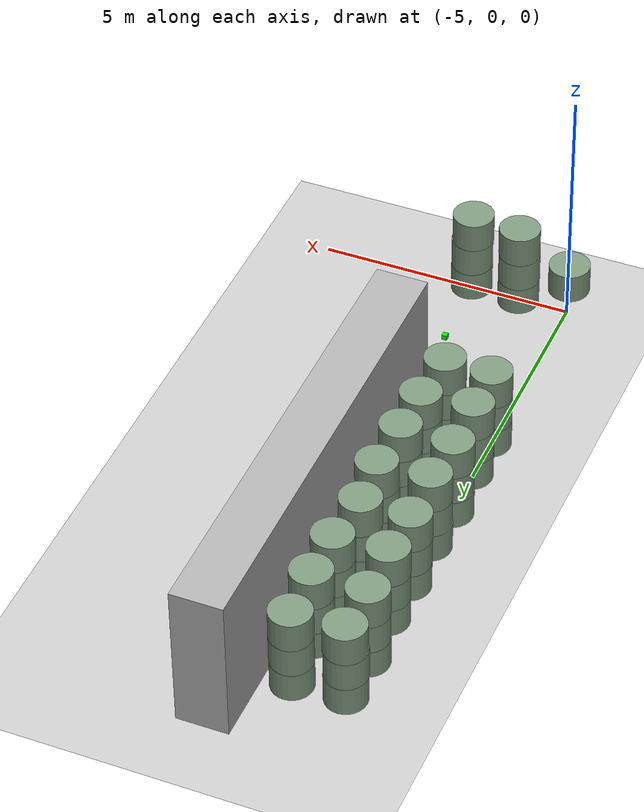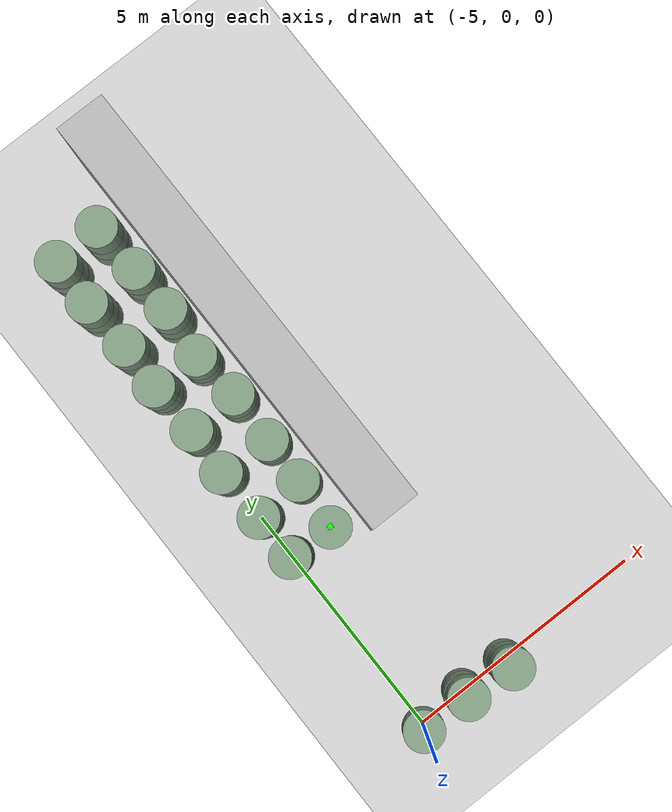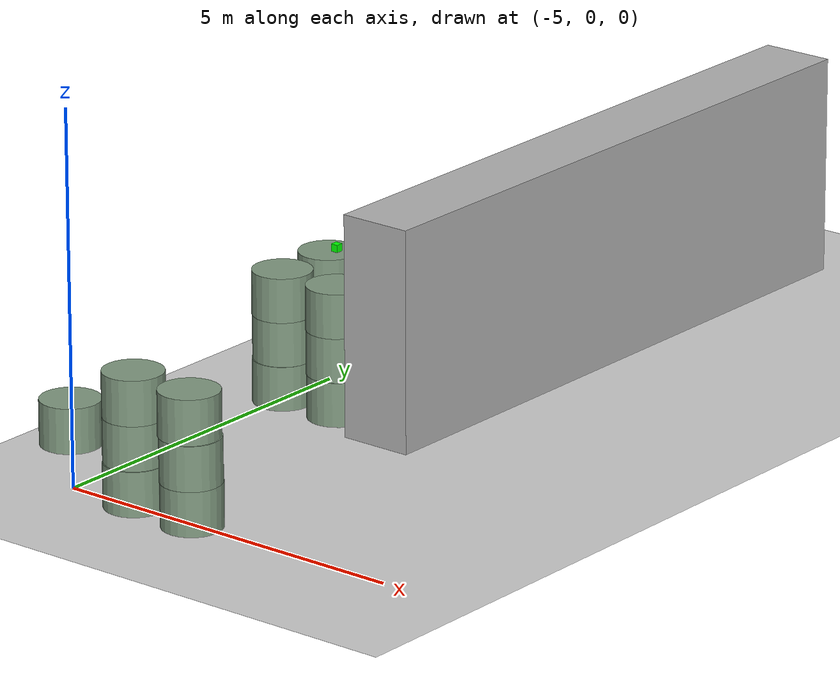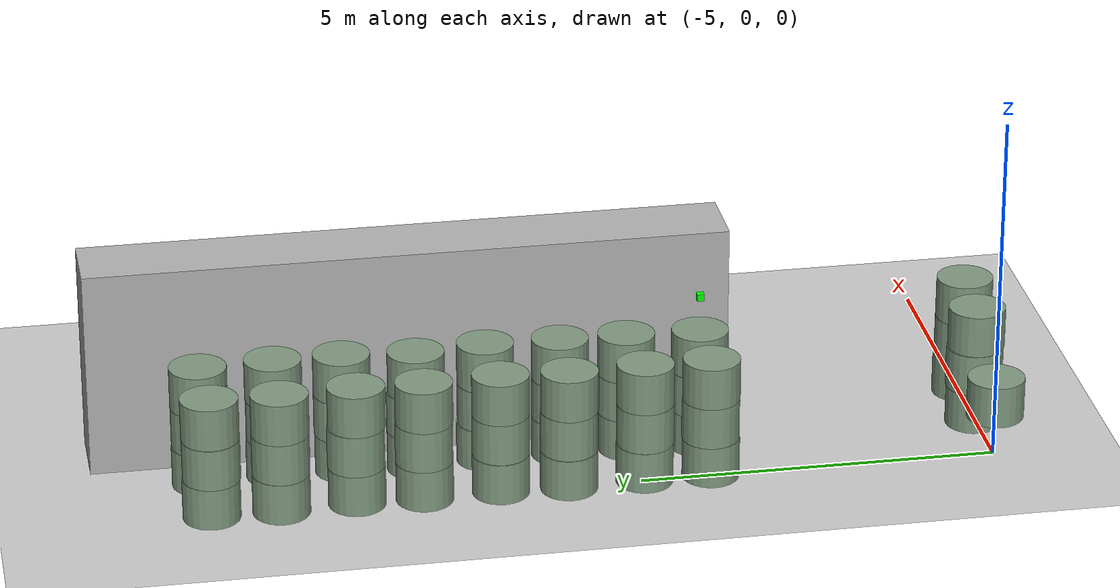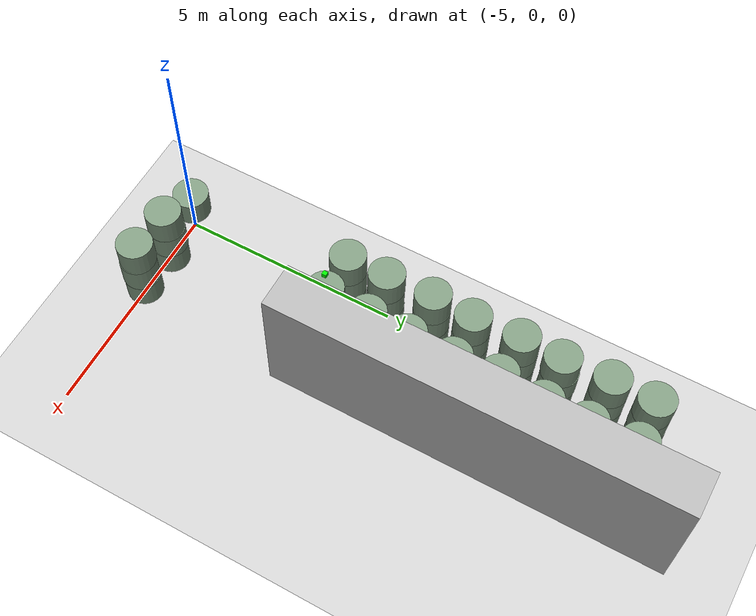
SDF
<sdf version="1.6">
 <world name="default">
  <model name="wall_3">
   <pose frame="sim_world">-3.0 8.0 1.5 0 0 0</pose>
   <static>True</static>
   <link name="wall_3_link">
    <inertial>
     <mass>100</mass>
     <inertia>
      <ixx>0.166667</ixx>
      <ixy>0</ixy>
      <ixz>0</ixz>
      <iyy>0.166667</iyy>
      <iyz>0</iyz>
      <izz>0.166667</izz>
     </inertia>
    </inertial>
    <collision name="wall_3_collision">
     <geometry><box><size>1.0 9.0 3.0</size></box></geometry>
     <max_contacts>100</max_contacts>
    </collision>
    <visual name="wall_3_visual">
     <geometry><box><size>1.0 9.0 3.0</size></box></geometry>
     <material><ambient>0.7 0.7 0.7 1</ambient><diffuse>0.7 0.7 0.7 1</diffuse></material>
    </visual>
   </link>
  </model>
  <model name="cylinder_70">
   <pose frame="sim_world">-5.02247039007 0.00130549979099 0.9 0 -0 0</pose>
   <static>True</static>
   <link name="cylinder_70_link">
    <inertial>
     <mass>100</mass>
     <inertia><ixx>0.145833</ixx><ixy>0</ixy><ixz>0</ixz><iyy>0.145833</iyy><iyz>0</iyz><izz>0.125</izz></inertia>
    </inertial>
    <collision name="cylinder_70_collision">
     <geometry><cylinder><length>0.6</length><radius>0.4</radius></cylinder></geometry>
     <max_contacts>100</max_contacts>
    </collision>
    <visual name="cylinder_70_visual">
     <geometry><cylinder><length>0.6</length><radius>0.4</radius></cylinder></geometry>
     <material><ambient>0.5 0.6 0.5 1</ambient><diffuse>0.5 0.6 0.5 1</diffuse></material>
    </visual>
   </link>
  </model>
  <model name="cylinder_72">
   <pose frame="sim_world">-4.96729994905 4.02571649465 0.3 0 -0 0</pose>
   <static>True</static>
   <link name="cylinder_72_link">
    <inertial>
     <mass>100</mass>
     <inertia><ixx>0.145833</ixx><ixy>0</ixy><ixz>0</ixz><iyy>0.145833</iyy><iyz>0</iyz><izz>0.125</izz></inertia>
    </inertial>
    <collision name="cylinder_72_collision">
     <geometry><cylinder><length>0.6</length><radius>0.4</radius></cylinder></geometry>
     <max_contacts>100</max_contacts>
    </collision>
    <visual name="cylinder_72_visual">
     <geometry><cylinder><length>0.6</length><radius>0.4</radius></cylinder></geometry>
     <material><ambient>0.5 0.6 0.5 1</ambient><diffuse>0.5 0.6 0.5 1</diffuse></material>
    </visual>
   </link>
  </model>
  <model name="cylinder_73">
   <pose frame="sim_world">-4.96571243679 4.03533766781 0.9 0 -0 0</pose>
   <static>True</static>
   <link name="cylinder_73_link">
    <inertial>
     <mass>100</mass>
     <inertia><ixx>0.145833</ixx><ixy>0</ixy><ixz>0</ixz><iyy>0.145833</iyy><iyz>0</iyz><izz>0.125</izz></inertia>
    </inertial>
    <collision name="cylinder_73_collision">
     <geometry><cylinder><length>0.6</length><radius>0.4</radius></cylinder></geometry>
     <max_contacts>100</max_contacts>
    </collision>
    <visual name="cylinder_73_visual">
     <geometry><cylinder><length>0.6</length><radius>0.4</radius></cylinder></geometry>
     <material><ambient>0.5 0.6 0.5 1</ambient><diffuse>0.5 0.6 0.5 1</diffuse></material>
    </visual>
   </link>
  </model>
  <model name="cylinder_74">
   <pose frame="sim_world">-4.96867291994 4.02974630601 1.5 0 -0 0</pose>
   <static>True</static>
   <link name="cylinder_74_link">
    <inertial>
     <mass>100</mass>
     <inertia><ixx>0.145833</ixx><ixy>0</ixy><ixz>0</ixz><iyy>0.145833</iyy><iyz>0</iyz><izz>0.125</izz></inertia>
    </inertial>
    <collision name="cylinder_74_collision">
     <geometry><cylinder><length>0.6</length><radius>0.4</radius></cylinder></geometry>
     <max_contacts>100</max_contacts>
    </collision>
    <visual name="cylinder_74_visual">
     <geometry><cylinder><length>0.6</length><radius>0.4</radius></cylinder></geometry>
     <material><ambient>0.5 0.6 0.5 1</ambient><diffuse>0.5 0.6 0.5 1</diffuse></material>
    </visual>
   </link>
  </model>
  <model name="cylinder_75">
   <pose frame="sim_world">-4.96746767143 4.95746706721 0.3 0 -0 0</pose>
   <static>True</static>
   <link name="cylinder_75_link">
    <inertial>
     <mass>100</mass>
     <inertia><ixx>0.145833</ixx><ixy>0</ixy><ixz>0</ixz><iyy>0.145833</iyy><iyz>0</iyz><izz>0.125</izz></inertia>
    </inertial>
    <collision name="cylinder_75_collision">
     <geometry><cylinder><length>0.6</length><radius>0.4</radius></cylinder></geometry>
     <max_contacts>100</max_contacts>
    </collision>
    <visual name="cylinder_75_visual">
     <geometry><cylinder><length>0.6</length><radius>0.4</radius></cylinder></geometry>
     <material><ambient>0.5 0.6 0.5 1</ambient><diffuse>0.5 0.6 0.5 1</diffuse></material>
    </visual>
   </link>
  </model>
  <model name="cylinder_76">
   <pose frame="sim_world">-4.96714978747 4.94937827695 0.9 0 -0 0</pose>
   <static>True</static>
   <link name="cylinder_76_link">
    <inertial>
     <mass>100</mass>
     <inertia><ixx>0.145833</ixx><ixy>0</ixy><ixz>0</ixz><iyy>0.145833</iyy><iyz>0</iyz><izz>0.125</izz></inertia>
    </inertial>
    <collision name="cylinder_76_collision">
     <geometry><cylinder><length>0.6</length><radius>0.4</radius></cylinder></geometry>
     <max_contacts>100</max_contacts>
    </collision>
    <visual name="cylinder_76_visual">
     <geometry><cylinder><length>0.6</length><radius>0.4</radius></cylinder></geometry>
     <material><ambient>0.5 0.6 0.5 1</ambient><diffuse>0.5 0.6 0.5 1</diffuse></material>
    </visual>
   </link>
  </model>
  <model name="cylinder_77">
   <pose frame="sim_world">-4.96989153009 4.95533965027 1.5 0 -0 0</pose>
   <static>True</static>
   <link name="cylinder_77_link">
    <inertial>
     <mass>100</mass>
     <inertia><ixx>0.145833</ixx><ixy>0</ixy><ixz>0</ixz><iyy>0.145833</iyy><iyz>0</iyz><izz>0.125</izz></inertia>
    </inertial>
    <collision name="cylinder_77_collision">
     <geometry><cylinder><length>0.6</length><radius>0.4</radius></cylinder></geometry>
     <max_contacts>100</max_contacts>
    </collision>
    <visual name="cylinder_77_visual">
     <geometry><cylinder><length>0.6</length><radius>0.4</radius></cylinder></geometry>
     <material><ambient>0.5 0.6 0.5 1</ambient><diffuse>0.5 0.6 0.5 1</diffuse></material>
    </visual>
   </link>
  </model>
  <model name="cylinder_78">
   <pose frame="sim_world">-5.00550552167 6.02336155491 0.3 0 -0 0</pose>
   <static>True</static>
   <link name="cylinder_78_link">
    <inertial>
     <mass>100</mass>
     <inertia><ixx>0.145833</ixx><ixy>0</ixy><ixz>0</ixz><iyy>0.145833</iyy><iyz>0</iyz><izz>0.125</izz></inertia>
    </inertial>
    <collision name="cylinder_78_collision">
     <geometry><cylinder><length>0.6</length><radius>0.4</radius></cylinder></geometry>
     <max_contacts>100</max_contacts>
    </collision>
    <visual name="cylinder_78_visual">
     <geometry><cylinder><length>0.6</length><radius>0.4</radius></cylinder></geometry>
     <material><ambient>0.5 0.6 0.5 1</ambient><diffuse>0.5 0.6 0.5 1</diffuse></material>
    </visual>
   </link>
  </model>
  <model name="cylinder_79">
   <pose frame="sim_world">-4.99261690055 6.0256120794 0.9 0 -0 0</pose>
   <static>True</static>
   <link name="cylinder_79_link">
    <inertial>
     <mass>100</mass>
     <inertia><ixx>0.145833</ixx><ixy>0</ixy><ixz>0</ixz><iyy>0.145833</iyy><iyz>0</iyz><izz>0.125</izz></inertia>
    </inertial>
    <collision name="cylinder_79_collision">
     <geometry><cylinder><length>0.6</length><radius>0.4</radius></cylinder></geometry>
     <max_contacts>100</max_contacts>
    </collision>
    <visual name="cylinder_79_visual">
     <geometry><cylinder><length>0.6</length><radius>0.4</radius></cylinder></geometry>
     <material><ambient>0.5 0.6 0.5 1</ambient><diffuse>0.5 0.6 0.5 1</diffuse></material>
    </visual>
   </link>
  </model>
  <model name="cylinder_80">
   <pose frame="sim_world">-5.00248042956 6.01832176252 1.5 0 -0 0</pose>
   <static>True</static>
   <link name="cylinder_80_link">
    <inertial>
     <mass>100</mass>
     <inertia><ixx>0.145833</ixx><ixy>0</ixy><ixz>0</ixz><iyy>0.145833</iyy><iyz>0</iyz><izz>0.125</izz></inertia>
    </inertial>
    <collision name="cylinder_80_collision">
     <geometry><cylinder><length>0.6</length><radius>0.4</radius></cylinder></geometry>
     <max_contacts>100</max_contacts>
    </collision>
    <visual name="cylinder_80_visual">
     <geometry><cylinder><length>0.6</length><radius>0.4</radius></cylinder></geometry>
     <material><ambient>0.5 0.6 0.5 1</ambient><diffuse>0.5 0.6 0.5 1</diffuse></material>
    </visual>
   </link>
  </model>
  <model name="cylinder_81">
   <pose frame="sim_world">-4.9603061503 6.96653866494 0.3 0 -0 0</pose>
   <static>True</static>
   <link name="cylinder_81_link">
    <inertial>
     <mass>100</mass>
     <inertia><ixx>0.145833</ixx><ixy>0</ixy><ixz>0</ixz><iyy>0.145833</iyy><iyz>0</iyz><izz>0.125</izz></inertia>
    </inertial>
    <collision name="cylinder_81_collision">
     <geometry><cylinder><length>0.6</length><radius>0.4</radius></cylinder></geometry>
     <max_contacts>100</max_contacts>
    </collision>
    <visual name="cylinder_81_visual">
     <geometry><cylinder><length>0.6</length><radius>0.4</radius></cylinder></geometry>
     <material><ambient>0.5 0.6 0.5 1</ambient><diffuse>0.5 0.6 0.5 1</diffuse></material>
    </visual>
   </link>
  </model>
  <model name="cylinder_82">
   <pose frame="sim_world">-4.94610467754 6.96508211103 0.9 0 -0 0</pose>
   <static>True</static>
   <link name="cylinder_82_link">
    <inertial>
     <mass>100</mass>
     <inertia><ixx>0.145833</ixx><ixy>0</ixy><ixz>0</ixz><iyy>0.145833</iyy><iyz>0</iyz><izz>0.125</izz></inertia>
    </inertial>
    <collision name="cylinder_82_collision">
     <geometry><cylinder><length>0.6</length><radius>0.4</radius></cylinder></geometry>
     <max_contacts>100</max_contacts>
    </collision>
    <visual name="cylinder_82_visual">
     <geometry><cylinder><length>0.6</length><radius>0.4</radius></cylinder></geometry>
     <material><ambient>0.5 0.6 0.5 1</ambient><diffuse>0.5 0.6 0.5 1</diffuse></material>
    </visual>
   </link>
  </model>
  <model name="cylinder_83">
   <pose frame="sim_world">-4.95228465244 6.96501977975 1.5 0 -0 0</pose>
   <static>True</static>
   <link name="cylinder_83_link">
    <inertial>
     <mass>100</mass>
     <inertia><ixx>0.145833</ixx><ixy>0</ixy><ixz>0</ixz><iyy>0.145833</iyy><iyz>0</iyz><izz>0.125</izz></inertia>
    </inertial>
    <collision name="cylinder_83_collision">
     <geometry><cylinder><length>0.6</length><radius>0.4</radius></cylinder></geometry>
     <max_contacts>100</max_contacts>
    </collision>
    <visual name="cylinder_83_visual">
     <geometry><cylinder><length>0.6</length><radius>0.4</radius></cylinder></geometry>
     <material><ambient>0.5 0.6 0.5 1</ambient><diffuse>0.5 0.6 0.5 1</diffuse></material>
    </visual>
   </link>
  </model>
  <model name="cylinder_84">
   <pose frame="sim_world">-4.99042980781 8.02958762259 0.3 0 -0 0</pose>
   <static>True</static>
   <link name="cylinder_84_link">
    <inertial>
     <mass>100</mass>
     <inertia><ixx>0.145833</ixx><ixy>0</ixy><ixz>0</ixz><iyy>0.145833</iyy><iyz>0</iyz><izz>0.125</izz></inertia>
    </inertial>
    <collision name="cylinder_84_collision">
     <geometry><cylinder><length>0.6</length><radius>0.4</radius></cylinder></geometry>
     <max_contacts>100</max_contacts>
    </collision>
    <visual name="cylinder_84_visual">
     <geometry><cylinder><length>0.6</length><radius>0.4</radius></cylinder></geometry>
     <material><ambient>0.5 0.6 0.5 1</ambient><diffuse>0.5 0.6 0.5 1</diffuse></material>
    </visual>
   </link>
  </model>
  <model name="cylinder_85">
   <pose frame="sim_world">-4.99214448029 8.03540983763 0.9 0 -0 0</pose>
   <static>True</static>
   <link name="cylinder_85_link">
    <inertial>
     <mass>100</mass>
     <inertia><ixx>0.145833</ixx><ixy>0</ixy><ixz>0</ixz><iyy>0.145833</iyy><iyz>0</iyz><izz>0.125</izz></inertia>
    </inertial>
    <collision name="cylinder_85_collision">
     <geometry><cylinder><length>0.6</length><radius>0.4</radius></cylinder></geometry>
     <max_contacts>100</max_contacts>
    </collision>
    <visual name="cylinder_85_visual">
     <geometry><cylinder><length>0.6</length><radius>0.4</radius></cylinder></geometry>
     <material><ambient>0.5 0.6 0.5 1</ambient><diffuse>0.5 0.6 0.5 1</diffuse></material>
    </visual>
   </link>
  </model>
  <model name="cylinder_86">
   <pose frame="sim_world">-5.00142174995 8.02967293043 1.5 0 -0 0</pose>
   <static>True</static>
   <link name="cylinder_86_link">
    <inertial>
     <mass>100</mass>
     <inertia><ixx>0.145833</ixx><ixy>0</ixy><ixz>0</ixz><iyy>0.145833</iyy><iyz>0</iyz><izz>0.125</izz></inertia>
    </inertial>
    <collision name="cylinder_86_collision">
     <geometry><cylinder><length>0.6</length><radius>0.4</radius></cylinder></geometry>
     <max_contacts>100</max_contacts>
    </collision>
    <visual name="cylinder_86_visual">
     <geometry><cylinder><length>0.6</length><radius>0.4</radius></cylinder></geometry>
     <material><ambient>0.5 0.6 0.5 1</ambient><diffuse>0.5 0.6 0.5 1</diffuse></material>
    </visual>
   </link>
  </model>
  <model name="cylinder_87">
   <pose frame="sim_world">-4.96395935713 8.96027865286 0.3 0 -0 0</pose>
   <static>True</static>
   <link name="cylinder_87_link">
    <inertial>
     <mass>100</mass>
     <inertia><ixx>0.145833</ixx><ixy>0</ixy><ixz>0</ixz><iyy>0.145833</iyy><iyz>0</iyz><izz>0.125</izz></inertia>
    </inertial>
    <collision name="cylinder_87_collision">
     <geometry><cylinder><length>0.6</length><radius>0.4</radius></cylinder></geometry>
     <max_contacts>100</max_contacts>
    </collision>
    <visual name="cylinder_87_visual">
     <geometry><cylinder><length>0.6</length><radius>0.4</radius></cylinder></geometry>
     <material><ambient>0.5 0.6 0.5 1</ambient><diffuse>0.5 0.6 0.5 1</diffuse></material>
    </visual>
   </link>
  </model>
  <model name="cylinder_88">
   <pose frame="sim_world">-4.96952828208 8.9711625489 0.9 0 -0 0</pose>
   <static>True</static>
   <link name="cylinder_88_link">
    <inertial>
     <mass>100</mass>
     <inertia><ixx>0.145833</ixx><ixy>0</ixy><ixz>0</ixz><iyy>0.145833</iyy><iyz>0</iyz><izz>0.125</izz></inertia>
    </inertial>
    <collision name="cylinder_88_collision">
     <geometry><cylinder><length>0.6</length><radius>0.4</radius></cylinder></geometry>
     <max_contacts>100</max_contacts>
    </collision>
    <visual name="cylinder_88_visual">
     <geometry><cylinder><length>0.6</length><radius>0.4</radius></cylinder></geometry>
     <material><ambient>0.5 0.6 0.5 1</ambient><diffuse>0.5 0.6 0.5 1</diffuse></material>
    </visual>
   </link>
  </model>
  <model name="cylinder_89">
   <pose frame="sim_world">-4.96785070713 8.95520015383 1.5 0 -0 0</pose>
   <static>True</static>
   <link name="cylinder_89_link">
    <inertial>
     <mass>100</mass>
     <inertia><ixx>0.145833</ixx><ixy>0</ixy><ixz>0</ixz><iyy>0.145833</iyy><iyz>0</iyz><izz>0.125</izz></inertia>
    </inertial>
    <collision name="cylinder_89_collision">
     <geometry><cylinder><length>0.6</length><radius>0.4</radius></cylinder></geometry>
     <max_contacts>100</max_contacts>
    </collision>
    <visual name="cylinder_89_visual">
     <geometry><cylinder><length>0.6</length><radius>0.4</radius></cylinder></geometry>
     <material><ambient>0.5 0.6 0.5 1</ambient><diffuse>0.5 0.6 0.5 1</diffuse></material>
    </visual>
   </link>
  </model>
  <model name="cylinder_90">
   <pose frame="sim_world">-5.02586074198 10.0094093663 0.3 0 -0 0</pose>
   <static>True</static>
   <link name="cylinder_90_link">
    <inertial>
     <mass>100</mass>
     <inertia><ixx>0.145833</ixx><ixy>0</ixy><ixz>0</ixz><iyy>0.145833</iyy><iyz>0</iyz><izz>0.125</izz></inertia>
    </inertial>
    <collision name="cylinder_90_collision">
     <geometry><cylinder><length>0.6</length><radius>0.4</radius></cylinder></geometry>
     <max_contacts>100</max_contacts>
    </collision>
    <visual name="cylinder_90_visual">
     <geometry><cylinder><length>0.6</length><radius>0.4</radius></cylinder></geometry>
     <material><ambient>0.5 0.6 0.5 1</ambient><diffuse>0.5 0.6 0.5 1</diffuse></material>
    </visual>
   </link>
  </model>
  <model name="cylinder_91">
   <pose frame="sim_world">-5.02139907157 10.0067929229 0.9 0 -0 0</pose>
   <static>True</static>
   <link name="cylinder_91_link">
    <inertial>
     <mass>100</mass>
     <inertia><ixx>0.145833</ixx><ixy>0</ixy><ixz>0</ixz><iyy>0.145833</iyy><iyz>0</iyz><izz>0.125</izz></inertia>
    </inertial>
    <collision name="cylinder_91_collision">
     <geometry><cylinder><length>0.6</length><radius>0.4</radius></cylinder></geometry>
     <max_contacts>100</max_contacts>
    </collision>
    <visual name="cylinder_91_visual">
     <geometry><cylinder><length>0.6</length><radius>0.4</radius></cylinder></geometry>
     <material><ambient>0.5 0.6 0.5 1</ambient><diffuse>0.5 0.6 0.5 1</diffuse></material>
    </visual>
   </link>
  </model>
  <model name="cylinder_92">
   <pose frame="sim_world">-5.02329839927 10.0050397006 1.5 0 -0 0</pose>
   <static>True</static>
   <link name="cylinder_92_link">
    <inertial>
     <mass>100</mass>
     <inertia><ixx>0.145833</ixx><ixy>0</ixy><ixz>0</ixz><iyy>0.145833</iyy><iyz>0</iyz><izz>0.125</izz></inertia>
    </inertial>
    <collision name="cylinder_92_collision">
     <geometry><cylinder><length>0.6</length><radius>0.4</radius></cylinder></geometry>
     <max_contacts>100</max_contacts>
    </collision>
    <visual name="cylinder_92_visual">
     <geometry><cylinder><length>0.6</length><radius>0.4</radius></cylinder></geometry>
     <material><ambient>0.5 0.6 0.5 1</ambient><diffuse>0.5 0.6 0.5 1</diffuse></material>
    </visual>
   </link>
  </model>
  <model name="cylinder_93">
   <pose frame="sim_world">-5.00811001362 10.9638394035 0.3 0 -0 0</pose>
   <static>True</static>
   <link name="cylinder_93_link">
    <inertial>
     <mass>100</mass>
     <inertia><ixx>0.145833</ixx><ixy>0</ixy><ixz>0</ixz><iyy>0.145833</iyy><iyz>0</iyz><izz>0.125</izz></inertia>
    </inertial>
    <collision name="cylinder_93_collision">
     <geometry><cylinder><length>0.6</length><radius>0.4</radius></cylinder></geometry>
     <max_contacts>100</max_contacts>
    </collision>
    <visual name="cylinder_93_visual">
     <geometry><cylinder><length>0.6</length><radius>0.4</radius></cylinder></geometry>
     <material><ambient>0.5 0.6 0.5 1</ambient><diffuse>0.5 0.6 0.5 1</diffuse></material>
    </visual>
   </link>
  </model>
  <model name="cylinder_94">
   <pose frame="sim_world">-5.01562472278 10.9535481426 0.9 0 -0 0</pose>
   <static>True</static>
   <link name="cylinder_94_link">
    <inertial>
     <mass>100</mass>
     <inertia><ixx>0.145833</ixx><ixy>0</ixy><ixz>0</ixz><iyy>0.145833</iyy><iyz>0</iyz><izz>0.125</izz></inertia>
    </inertial>
    <collision name="cylinder_94_collision">
     <geometry><cylinder><length>0.6</length><radius>0.4</radius></cylinder></geometry>
     <max_contacts>100</max_contacts>
    </collision>
    <visual name="cylinder_94_visual">
     <geometry><cylinder><length>0.6</length><radius>0.4</radius></cylinder></geometry>
     <material><ambient>0.5 0.6 0.5 1</ambient><diffuse>0.5 0.6 0.5 1</diffuse></material>
    </visual>
   </link>
  </model>
  <model name="cylinder_95">
   <pose frame="sim_world">-5.00296457537 10.9558457434 1.5 0 -0 0</pose>
   <static>True</static>
   <link name="cylinder_95_link">
    <inertial>
     <mass>100</mass>
     <inertia><ixx>0.145833</ixx><ixy>0</ixy><ixz>0</ixz><iyy>0.145833</iyy><iyz>0</iyz><izz>0.125</izz></inertia>
    </inertial>
    <collision name="cylinder_95_collision">
     <geometry><cylinder><length>0.6</length><radius>0.4</radius></cylinder></geometry>
     <max_contacts>100</max_contacts>
    </collision>
    <visual name="cylinder_95_visual">
     <geometry><cylinder><length>0.6</length><radius>0.4</radius></cylinder></geometry>
     <material><ambient>0.5 0.6 0.5 1</ambient><diffuse>0.5 0.6 0.5 1</diffuse></material>
    </visual>
   </link>
  </model>
  <model name="cylinder_111">
   <pose frame="sim_world">-4.00703487673 0.0320486012954 0.3 0 -0 0</pose>
   <static>True</static>
   <link name="cylinder_111_link">
    <inertial>
     <mass>100</mass>
     <inertia><ixx>0.145833</ixx><ixy>0</ixy><ixz>0</ixz><iyy>0.145833</iyy><iyz>0</iyz><izz>0.125</izz></inertia>
    </inertial>
    <collision name="cylinder_111_collision">
     <geometry><cylinder><length>0.6</length><radius>0.4</radius></cylinder></geometry>
     <max_contacts>100</max_contacts>
    </collision>
    <visual name="cylinder_111_visual">
     <geometry><cylinder><length>0.6</length><radius>0.4</radius></cylinder></geometry>
     <material><ambient>0.5 0.6 0.5 1</ambient><diffuse>0.5 0.6 0.5 1</diffuse></material>
    </visual>
   </link>
  </model>
  <model name="cylinder_112">
   <pose frame="sim_world">-4.01636854532 0.0488339911007 0.9 0 -0 0</pose>
   <static>True</static>
   <link name="cylinder_112_link">
    <inertial>
     <mass>100</mass>
     <inertia><ixx>0.145833</ixx><ixy>0</ixy><ixz>0</ixz><iyy>0.145833</iyy><iyz>0</iyz><izz>0.125</izz></inertia>
    </inertial>
    <collision name="cylinder_112_collision">
     <geometry><cylinder><length>0.6</length><radius>0.4</radius></cylinder></geometry>
     <max_contacts>100</max_contacts>
    </collision>
    <visual name="cylinder_112_visual">
     <geometry><cylinder><length>0.6</length><radius>0.4</radius></cylinder></geometry>
     <material><ambient>0.5 0.6 0.5 1</ambient><diffuse>0.5 0.6 0.5 1</diffuse></material>
    </visual>
   </link>
  </model>
  <model name="cylinder_113">
   <pose frame="sim_world">-4.00437916833 0.0339450643848 1.5 0 -0 0</pose>
   <static>True</static>
   <link name="cylinder_113_link">
    <inertial>
     <mass>100</mass>
     <inertia><ixx>0.145833</ixx><ixy>0</ixy><ixz>0</ixz><iyy>0.145833</iyy><iyz>0</iyz><izz>0.125</izz></inertia>
    </inertial>
    <collision name="cylinder_113_collision">
     <geometry><cylinder><length>0.6</length><radius>0.4</radius></cylinder></geometry>
     <max_contacts>100</max_contacts>
    </collision>
    <visual name="cylinder_113_visual">
     <geometry><cylinder><length>0.6</length><radius>0.4</radius></cylinder></geometry>
     <material><ambient>0.5 0.6 0.5 1</ambient><diffuse>0.5 0.6 0.5 1</diffuse></material>
    </visual>
   </link>
  </model>
  <model name="cylinder_114">
   <pose frame="sim_world">-4.04660328372 4.01538168269 0.3 0 -0 0</pose>
   <static>True</static>
   <link name="cylinder_114_link">
    <inertial>
     <mass>100</mass>
     <inertia><ixx>0.145833</ixx><ixy>0</ixy><ixz>0</ixz><iyy>0.145833</iyy><iyz>0</iyz><izz>0.125</izz></inertia>
    </inertial>
    <collision name="cylinder_114_collision">
     <geometry><cylinder><length>0.6</length><radius>0.4</radius></cylinder></geometry>
     <max_contacts>100</max_contacts>
    </collision>
    <visual name="cylinder_114_visual">
     <geometry><cylinder><length>0.6</length><radius>0.4</radius></cylinder></geometry>
     <material><ambient>0.5 0.6 0.5 1</ambient><diffuse>0.5 0.6 0.5 1</diffuse></material>
    </visual>
   </link>
   <model name="radiation_source_cylinder_114">
    <static>true</static>
    <link name="link_radiation_source_cylinder_114">
     <visual name="visual_radiation_source_cylinder_114_0">
      <geometry><box><size>0.1 0.1 0.1</size></box></geometry>
      <material><ambient>1 0.0  0 1.0</ambient><diffuse>1 0.0  0 1.0</diffuse></material>
     </visual>
     <visual name="visual_radiation_source_cylinder_114_1">
      <pose>0 0 2.0 0 0 0</pose>
      <geometry><box><size>0.1 0.1 0.1</size></box></geometry>
      <material><ambient>0 1.0  0 1.0</ambient><diffuse>0 1.0  0 1.0</diffuse></material>
     </visual>
     <sensor name="radiation_source_cylinder_114" type="radiation_source">
      <always_on>1</always_on>
      <update_rate>1.0</update_rate>
      <topic>source_4/gamma</topic>
      <plugin filename="libradiation_source_plugin.so" name="radiation_source_plugin"/>
     </sensor>
    </link>
   </model>
  </model>
  <model name="cylinder_115">
   <pose frame="sim_world">-4.05248956659 4.01489655232 0.9 0 -0 0</pose>
   <static>True</static>
   <link name="cylinder_115_link">
    <inertial>
     <mass>100</mass>
     <inertia><ixx>0.145833</ixx><ixy>0</ixy><ixz>0</ixz><iyy>0.145833</iyy><iyz>0</iyz><izz>0.125</izz></inertia>
    </inertial>
    <collision name="cylinder_115_collision">
     <geometry><cylinder><length>0.6</length><radius>0.4</radius></cylinder></geometry>
     <max_contacts>100</max_contacts>
    </collision>
    <visual name="cylinder_115_visual">
     <geometry><cylinder><length>0.6</length><radius>0.4</radius></cylinder></geometry>
     <material><ambient>0.5 0.6 0.5 1</ambient><diffuse>0.5 0.6 0.5 1</diffuse></material>
    </visual>
   </link>
  </model>
  <model name="cylinder_116">
   <pose frame="sim_world">-4.05246002648 4.00974390196 1.5 0 -0 0</pose>
   <static>True</static>
   <link name="cylinder_116_link">
    <inertial>
     <mass>100</mass>
     <inertia><ixx>0.145833</ixx><ixy>0</ixy><ixz>0</ixz><iyy>0.145833</iyy><iyz>0</iyz><izz>0.125</izz></inertia>
    </inertial>
    <collision name="cylinder_116_collision">
     <geometry><cylinder><length>0.6</length><radius>0.4</radius></cylinder></geometry>
     <max_contacts>100</max_contacts>
    </collision>
    <visual name="cylinder_116_visual">
     <geometry><cylinder><length>0.6</length><radius>0.4</radius></cylinder></geometry>
     <material><ambient>0.5 0.6 0.5 1</ambient><diffuse>0.5 0.6 0.5 1</diffuse></material>
    </visual>
   </link>
  </model>
  <model name="cylinder_117">
   <pose frame="sim_world">-3.97826792697 5.02565197419 0.3 0 -0 0</pose>
   <static>True</static>
   <link name="cylinder_117_link">
    <inertial>
     <mass>100</mass>
     <inertia><ixx>0.145833</ixx><ixy>0</ixy><ixz>0</ixz><iyy>0.145833</iyy><iyz>0</iyz><izz>0.125</izz></inertia>
    </inertial>
    <collision name="cylinder_117_collision">
     <geometry><cylinder><length>0.6</length><radius>0.4</radius></cylinder></geometry>
     <max_contacts>100</max_contacts>
    </collision>
    <visual name="cylinder_117_visual">
     <geometry><cylinder><length>0.6</length><radius>0.4</radius></cylinder></geometry>
     <material><ambient>0.5 0.6 0.5 1</ambient><diffuse>0.5 0.6 0.5 1</diffuse></material>
    </visual>
   </link>
  </model>
  <model name="cylinder_118">
   <pose frame="sim_world">-3.98035113901 5.04087874754 0.9 0 -0 0</pose>
   <static>True</static>
   <link name="cylinder_118_link">
    <inertial>
     <mass>100</mass>
     <inertia><ixx>0.145833</ixx><ixy>0</ixy><ixz>0</ixz><iyy>0.145833</iyy><iyz>0</iyz><izz>0.125</izz></inertia>
    </inertial>
    <collision name="cylinder_118_collision">
     <geometry><cylinder><length>0.6</length><radius>0.4</radius></cylinder></geometry>
     <max_contacts>100</max_contacts>
    </collision>
    <visual name="cylinder_118_visual">
     <geometry><cylinder><length>0.6</length><radius>0.4</radius></cylinder></geometry>
     <material><ambient>0.5 0.6 0.5 1</ambient><diffuse>0.5 0.6 0.5 1</diffuse></material>
    </visual>
   </link>
  </model>
  <model name="cylinder_119">
   <pose frame="sim_world">-3.98998523093 5.0434393119 1.5 0 -0 0</pose>
   <static>True</static>
   <link name="cylinder_119_link">
    <inertial>
     <mass>100</mass>
     <inertia><ixx>0.145833</ixx><ixy>0</ixy><ixz>0</ixz><iyy>0.145833</iyy><iyz>0</iyz><izz>0.125</izz></inertia>
    </inertial>
    <collision name="cylinder_119_collision">
     <geometry><cylinder><length>0.6</length><radius>0.4</radius></cylinder></geometry>
     <max_contacts>100</max_contacts>
    </collision>
    <visual name="cylinder_119_visual">
     <geometry><cylinder><length>0.6</length><radius>0.4</radius></cylinder></geometry>
     <material><ambient>0.5 0.6 0.5 1</ambient><diffuse>0.5 0.6 0.5 1</diffuse></material>
    </visual>
   </link>
  </model>
  <model name="cylinder_120">
   <pose frame="sim_world">-3.97596479835 5.97598138272 0.3 0 -0 0</pose>
   <static>True</static>
   <link name="cylinder_120_link">
    <inertial>
     <mass>100</mass>
     <inertia><ixx>0.145833</ixx><ixy>0</ixy><ixz>0</ixz><iyy>0.145833</iyy><iyz>0</iyz><izz>0.125</izz></inertia>
    </inertial>
    <collision name="cylinder_120_collision">
     <geometry><cylinder><length>0.6</length><radius>0.4</radius></cylinder></geometry>
     <max_contacts>100</max_contacts>
    </collision>
    <visual name="cylinder_120_visual">
     <geometry><cylinder><length>0.6</length><radius>0.4</radius></cylinder></geometry>
     <material><ambient>0.5 0.6 0.5 1</ambient><diffuse>0.5 0.6 0.5 1</diffuse></material>
    </visual>
   </link>
  </model>
  <model name="cylinder_121">
   <pose frame="sim_world">-3.96407400983 5.9717394434 0.9 0 -0 0</pose>
   <static>True</static>
   <link name="cylinder_121_link">
    <inertial>
     <mass>100</mass>
     <inertia><ixx>0.145833</ixx><ixy>0</ixy><ixz>0</ixz><iyy>0.145833</iyy><iyz>0</iyz><izz>0.125</izz></inertia>
    </inertial>
    <collision name="cylinder_121_collision">
     <geometry><cylinder><length>0.6</length><radius>0.4</radius></cylinder></geometry>
     <max_contacts>100</max_contacts>
    </collision>
    <visual name="cylinder_121_visual">
     <geometry><cylinder><length>0.6</length><radius>0.4</radius></cylinder></geometry>
     <material><ambient>0.5 0.6 0.5 1</ambient><diffuse>0.5 0.6 0.5 1</diffuse></material>
    </visual>
   </link>
  </model>
  <model name="cylinder_122">
   <pose frame="sim_world">-3.977052364 5.97530611852 1.5 0 -0 0</pose>
   <static>True</static>
   <link name="cylinder_122_link">
    <inertial>
     <mass>100</mass>
     <inertia><ixx>0.145833</ixx><ixy>0</ixy><ixz>0</ixz><iyy>0.145833</iyy><iyz>0</iyz><izz>0.125</izz></inertia>
    </inertial>
    <collision name="cylinder_122_collision">
     <geometry><cylinder><length>0.6</length><radius>0.4</radius></cylinder></geometry>
     <max_contacts>100</max_contacts>
    </collision>
    <visual name="cylinder_122_visual">
     <geometry><cylinder><length>0.6</length><radius>0.4</radius></cylinder></geometry>
     <material><ambient>0.5 0.6 0.5 1</ambient><diffuse>0.5 0.6 0.5 1</diffuse></material>
    </visual>
   </link>
  </model>
  <model name="cylinder_123">
   <pose frame="sim_world">-3.95838101689 7.0306150573 0.3 0 -0 0</pose>
   <static>True</static>
   <link name="cylinder_123_link">
    <inertial>
     <mass>100</mass>
     <inertia><ixx>0.145833</ixx><ixy>0</ixy><ixz>0</ixz><iyy>0.145833</iyy><iyz>0</iyz><izz>0.125</izz></inertia>
    </inertial>
    <collision name="cylinder_123_collision">
     <geometry><cylinder><length>0.6</length><radius>0.4</radius></cylinder></geometry>
     <max_contacts>100</max_contacts>
    </collision>
    <visual name="cylinder_123_visual">
     <geometry><cylinder><length>0.6</length><radius>0.4</radius></cylinder></geometry>
     <material><ambient>0.5 0.6 0.5 1</ambient><diffuse>0.5 0.6 0.5 1</diffuse></material>
    </visual>
   </link>
  </model>
  <model name="cylinder_124">
   <pose frame="sim_world">-3.95784734797 7.01696593172 0.9 0 -0 0</pose>
   <static>True</static>
   <link name="cylinder_124_link">
    <inertial>
     <mass>100</mass>
     <inertia><ixx>0.145833</ixx><ixy>0</ixy><ixz>0</ixz><iyy>0.145833</iyy><iyz>0</iyz><izz>0.125</izz></inertia>
    </inertial>
    <collision name="cylinder_124_collision">
     <geometry><cylinder><length>0.6</length><radius>0.4</radius></cylinder></geometry>
     <max_contacts>100</max_contacts>
    </collision>
    <visual name="cylinder_124_visual">
     <geometry><cylinder><length>0.6</length><radius>0.4</radius></cylinder></geometry>
     <material><ambient>0.5 0.6 0.5 1</ambient><diffuse>0.5 0.6 0.5 1</diffuse></material>
    </visual>
   </link>
  </model>
  <model name="cylinder_125">
   <pose frame="sim_world">-3.94799978859 7.01845542066 1.5 0 -0 0</pose>
   <static>True</static>
   <link name="cylinder_125_link">
    <inertial>
     <mass>100</mass>
     <inertia><ixx>0.145833</ixx><ixy>0</ixy><ixz>0</ixz><iyy>0.145833</iyy><iyz>0</iyz><izz>0.125</izz></inertia>
    </inertial>
    <collision name="cylinder_125_collision">
     <geometry><cylinder><length>0.6</length><radius>0.4</radius></cylinder></geometry>
     <max_contacts>100</max_contacts>
    </collision>
    <visual name="cylinder_125_visual">
     <geometry><cylinder><length>0.6</length><radius>0.4</radius></cylinder></geometry>
     <material><ambient>0.5 0.6 0.5 1</ambient><diffuse>0.5 0.6 0.5 1</diffuse></material>
    </visual>
   </link>
  </model>
  <model name="cylinder_126">
   <pose frame="sim_world">-4.05238511534 8.01998589758 0.3 0 -0 0</pose>
   <static>True</static>
   <link name="cylinder_126_link">
    <inertial>
     <mass>100</mass>
     <inertia><ixx>0.145833</ixx><ixy>0</ixy><ixz>0</ixz><iyy>0.145833</iyy><iyz>0</iyz><izz>0.125</izz></inertia>
    </inertial>
    <collision name="cylinder_126_collision">
     <geometry><cylinder><length>0.6</length><radius>0.4</radius></cylinder></geometry>
     <max_contacts>100</max_contacts>
    </collision>
    <visual name="cylinder_126_visual">
     <geometry><cylinder><length>0.6</length><radius>0.4</radius></cylinder></geometry>
     <material><ambient>0.5 0.6 0.5 1</ambient><diffuse>0.5 0.6 0.5 1</diffuse></material>
    </visual>
   </link>
  </model>
  <model name="cylinder_127">
   <pose frame="sim_world">-4.04416479167 8.02118141945 0.9 0 -0 0</pose>
   <static>True</static>
   <link name="cylinder_127_link">
    <inertial>
     <mass>100</mass>
     <inertia><ixx>0.145833</ixx><ixy>0</ixy><ixz>0</ixz><iyy>0.145833</iyy><iyz>0</iyz><izz>0.125</izz></inertia>
    </inertial>
    <collision name="cylinder_127_collision">
     <geometry><cylinder><length>0.6</length><radius>0.4</radius></cylinder></geometry>
     <max_contacts>100</max_contacts>
    </collision>
    <visual name="cylinder_127_visual">
     <geometry><cylinder><length>0.6</length><radius>0.4</radius></cylinder></geometry>
     <material><ambient>0.5 0.6 0.5 1</ambient><diffuse>0.5 0.6 0.5 1</diffuse></material>
    </visual>
   </link>
  </model>
  <model name="cylinder_128">
   <pose frame="sim_world">-4.04903602831 8.00291125708 1.5 0 -0 0</pose>
   <static>True</static>
   <link name="cylinder_128_link">
    <inertial>
     <mass>100</mass>
     <inertia><ixx>0.145833</ixx><ixy>0</ixy><ixz>0</ixz><iyy>0.145833</iyy><iyz>0</iyz><izz>0.125</izz></inertia>
    </inertial>
    <collision name="cylinder_128_collision">
     <geometry><cylinder><length>0.6</length><radius>0.4</radius></cylinder></geometry>
     <max_contacts>100</max_contacts>
    </collision>
    <visual name="cylinder_128_visual">
     <geometry><cylinder><length>0.6</length><radius>0.4</radius></cylinder></geometry>
     <material><ambient>0.5 0.6 0.5 1</ambient><diffuse>0.5 0.6 0.5 1</diffuse></material>
    </visual>
   </link>
  </model>
  <model name="cylinder_129">
   <pose frame="sim_world">-3.96156919588 9.01612701155 0.3 0 -0 0</pose>
   <static>True</static>
   <link name="cylinder_129_link">
    <inertial>
     <mass>100</mass>
     <inertia><ixx>0.145833</ixx><ixy>0</ixy><ixz>0</ixz><iyy>0.145833</iyy><iyz>0</iyz><izz>0.125</izz></inertia>
    </inertial>
    <collision name="cylinder_129_collision">
     <geometry><cylinder><length>0.6</length><radius>0.4</radius></cylinder></geometry>
     <max_contacts>100</max_contacts>
    </collision>
    <visual name="cylinder_129_visual">
     <geometry><cylinder><length>0.6</length><radius>0.4</radius></cylinder></geometry>
     <material><ambient>0.5 0.6 0.5 1</ambient><diffuse>0.5 0.6 0.5 1</diffuse></material>
    </visual>
   </link>
  </model>
  <model name="cylinder_130">
   <pose frame="sim_world">-3.953727257 9.02297085337 0.9 0 -0 0</pose>
   <static>True</static>
   <link name="cylinder_130_link">
    <inertial>
     <mass>100</mass>
     <inertia><ixx>0.145833</ixx><ixy>0</ixy><ixz>0</ixz><iyy>0.145833</iyy><iyz>0</iyz><izz>0.125</izz></inertia>
    </inertial>
    <collision name="cylinder_130_collision">
     <geometry><cylinder><length>0.6</length><radius>0.4</radius></cylinder></geometry>
     <max_contacts>100</max_contacts>
    </collision>
    <visual name="cylinder_130_visual">
     <geometry><cylinder><length>0.6</length><radius>0.4</radius></cylinder></geometry>
     <material><ambient>0.5 0.6 0.5 1</ambient><diffuse>0.5 0.6 0.5 1</diffuse></material>
    </visual>
   </link>
  </model>
  <model name="cylinder_131">
   <pose frame="sim_world">-3.95373959113 9.02199145212 1.5 0 -0 0</pose>
   <static>True</static>
   <link name="cylinder_131_link">
    <inertial>
     <mass>100</mass>
     <inertia><ixx>0.145833</ixx><ixy>0</ixy><ixz>0</ixz><iyy>0.145833</iyy><iyz>0</iyz><izz>0.125</izz></inertia>
    </inertial>
    <collision name="cylinder_131_collision">
     <geometry><cylinder><length>0.6</length><radius>0.4</radius></cylinder></geometry>
     <max_contacts>100</max_contacts>
    </collision>
    <visual name="cylinder_131_visual">
     <geometry><cylinder><length>0.6</length><radius>0.4</radius></cylinder></geometry>
     <material><ambient>0.5 0.6 0.5 1</ambient><diffuse>0.5 0.6 0.5 1</diffuse></material>
    </visual>
   </link>
  </model>
  <model name="cylinder_132">
   <pose frame="sim_world">-3.95959020477 9.97420812348 0.3 0 -0 0</pose>
   <static>True</static>
   <link name="cylinder_132_link">
    <inertial>
     <mass>100</mass>
     <inertia><ixx>0.145833</ixx><ixy>0</ixy><ixz>0</ixz><iyy>0.145833</iyy><iyz>0</iyz><izz>0.125</izz></inertia>
    </inertial>
    <collision name="cylinder_132_collision">
     <geometry><cylinder><length>0.6</length><radius>0.4</radius></cylinder></geometry>
     <max_contacts>100</max_contacts>
    </collision>
    <visual name="cylinder_132_visual">
     <geometry><cylinder><length>0.6</length><radius>0.4</radius></cylinder></geometry>
     <material><ambient>0.5 0.6 0.5 1</ambient><diffuse>0.5 0.6 0.5 1</diffuse></material>
    </visual>
   </link>
  </model>
  <model name="cylinder_133">
   <pose frame="sim_world">-3.95277957887 9.96386765481 0.9 0 -0 0</pose>
   <static>True</static>
   <link name="cylinder_133_link">
    <inertial>
     <mass>100</mass>
     <inertia><ixx>0.145833</ixx><ixy>0</ixy><ixz>0</ixz><iyy>0.145833</iyy><iyz>0</iyz><izz>0.125</izz></inertia>
    </inertial>
    <collision name="cylinder_133_collision">
     <geometry><cylinder><length>0.6</length><radius>0.4</radius></cylinder></geometry>
     <max_contacts>100</max_contacts>
    </collision>
    <visual name="cylinder_133_visual">
     <geometry><cylinder><length>0.6</length><radius>0.4</radius></cylinder></geometry>
     <material><ambient>0.5 0.6 0.5 1</ambient><diffuse>0.5 0.6 0.5 1</diffuse></material>
    </visual>
   </link>
  </model>
  <model name="cylinder_134">
   <pose frame="sim_world">-3.96056724738 9.97085512297 1.5 0 -0 0</pose>
   <static>True</static>
   <link name="cylinder_134_link">
    <inertial>
     <mass>100</mass>
     <inertia><ixx>0.145833</ixx><ixy>0</ixy><ixz>0</ixz><iyy>0.145833</iyy><iyz>0</iyz><izz>0.125</izz></inertia>
    </inertial>
    <collision name="cylinder_134_collision">
     <geometry><cylinder><length>0.6</length><radius>0.4</radius></cylinder></geometry>
     <max_contacts>100</max_contacts>
    </collision>
    <visual name="cylinder_134_visual">
     <geometry><cylinder><length>0.6</length><radius>0.4</radius></cylinder></geometry>
     <material><ambient>0.5 0.6 0.5 1</ambient><diffuse>0.5 0.6 0.5 1</diffuse></material>
    </visual>
   </link>
  </model>
  <model name="cylinder_135">
   <pose frame="sim_world">-4.02651928567 11.0126697968 0.3 0 -0 0</pose>
   <static>True</static>
   <link name="cylinder_135_link">
    <inertial>
     <mass>100</mass>
     <inertia><ixx>0.145833</ixx><ixy>0</ixy><ixz>0</ixz><iyy>0.145833</iyy><iyz>0</iyz><izz>0.125</izz></inertia>
    </inertial>
    <collision name="cylinder_135_collision">
     <geometry><cylinder><length>0.6</length><radius>0.4</radius></cylinder></geometry>
     <max_contacts>100</max_contacts>
    </collision>
    <visual name="cylinder_135_visual">
     <geometry><cylinder><length>0.6</length><radius>0.4</radius></cylinder></geometry>
     <material><ambient>0.5 0.6 0.5 1</ambient><diffuse>0.5 0.6 0.5 1</diffuse></material>
    </visual>
   </link>
  </model>
  <model name="cylinder_136">
   <pose frame="sim_world">-4.02071172608 11.0066525826 0.9 0 -0 0</pose>
   <static>True</static>
   <link name="cylinder_136_link">
    <inertial>
     <mass>100</mass>
     <inertia><ixx>0.145833</ixx><ixy>0</ixy><ixz>0</ixz><iyy>0.145833</iyy><iyz>0</iyz><izz>0.125</izz></inertia>
    </inertial>
    <collision name="cylinder_136_collision">
     <geometry><cylinder><length>0.6</length><radius>0.4</radius></cylinder></geometry>
     <max_contacts>100</max_contacts>
    </collision>
    <visual name="cylinder_136_visual">
     <geometry><cylinder><length>0.6</length><radius>0.4</radius></cylinder></geometry>
     <material><ambient>0.5 0.6 0.5 1</ambient><diffuse>0.5 0.6 0.5 1</diffuse></material>
    </visual>
   </link>
  </model>
  <model name="cylinder_137">
   <pose frame="sim_world">-4.02309636792 11.0078791604 1.5 0 -0 0</pose>
   <static>True</static>
   <link name="cylinder_137_link">
    <inertial>
     <mass>100</mass>
     <inertia><ixx>0.145833</ixx><ixy>0</ixy><ixz>0</ixz><iyy>0.145833</iyy><iyz>0</iyz><izz>0.125</izz></inertia>
    </inertial>
    <collision name="cylinder_137_collision">
     <geometry><cylinder><length>0.6</length><radius>0.4</radius></cylinder></geometry>
     <max_contacts>100</max_contacts>
    </collision>
    <visual name="cylinder_137_visual">
     <geometry><cylinder><length>0.6</length><radius>0.4</radius></cylinder></geometry>
     <material><ambient>0.5 0.6 0.5 1</ambient><diffuse>0.5 0.6 0.5 1</diffuse></material>
    </visual>
   </link>
  </model>
  <model name="cylinder_153">
   <pose frame="sim_world">-3.02000411924 -0.0224521555782 0.3 0 -0 0</pose>
   <static>True</static>
   <link name="cylinder_153_link">
    <inertial>
     <mass>100</mass>
     <inertia><ixx>0.145833</ixx><ixy>0</ixy><ixz>0</ixz><iyy>0.145833</iyy><iyz>0</iyz><izz>0.125</izz></inertia>
    </inertial>
    <collision name="cylinder_153_collision">
     <geometry><cylinder><length>0.6</length><radius>0.4</radius></cylinder></geometry>
     <max_contacts>100</max_contacts>
    </collision>
    <visual name="cylinder_153_visual">
     <geometry><cylinder><length>0.6</length><radius>0.4</radius></cylinder></geometry>
     <material><ambient>0.5 0.6 0.5 1</ambient><diffuse>0.5 0.6 0.5 1</diffuse></material>
    </visual>
   </link>
  </model>
  <model name="cylinder_154">
   <pose frame="sim_world">-3.01574730542 -0.0368946910702 0.9 0 -0 0</pose>
   <static>True</static>
   <link name="cylinder_154_link">
    <inertial>
     <mass>100</mass>
     <inertia><ixx>0.145833</ixx><ixy>0</ixy><ixz>0</ixz><iyy>0.145833</iyy><iyz>0</iyz><izz>0.125</izz></inertia>
    </inertial>
    <collision name="cylinder_154_collision">
     <geometry><cylinder><length>0.6</length><radius>0.4</radius></cylinder></geometry>
     <max_contacts>100</max_contacts>
    </collision>
    <visual name="cylinder_154_visual">
     <geometry><cylinder><length>0.6</length><radius>0.4</radius></cylinder></geometry>
     <material><ambient>0.5 0.6 0.5 1</ambient><diffuse>0.5 0.6 0.5 1</diffuse></material>
    </visual>
   </link>
  </model>
  <model name="cylinder_155">
   <pose frame="sim_world">-3.03288822983 -0.0348630163248 1.5 0 -0 0</pose>
   <static>True</static>
   <link name="cylinder_155_link">
    <inertial>
     <mass>100</mass>
     <inertia><ixx>0.145833</ixx><ixy>0</ixy><ixz>0</ixz><iyy>0.145833</iyy><iyz>0</iyz><izz>0.125</izz></inertia>
    </inertial>
    <collision name="cylinder_155_collision">
     <geometry><cylinder><length>0.6</length><radius>0.4</radius></cylinder></geometry>
     <max_contacts>100</max_contacts>
    </collision>
    <visual name="cylinder_155_visual">
     <geometry><cylinder><length>0.6</length><radius>0.4</radius></cylinder></geometry>
     <material><ambient>0.5 0.6 0.5 1</ambient><diffuse>0.5 0.6 0.5 1</diffuse></material>
    </visual>
   </link>
  </model>
  <include><uri>model://ground_plane</uri></include>
  <model name="ground_plane"><link name="ground_plane"/></model>
 </world>
</sdf>
